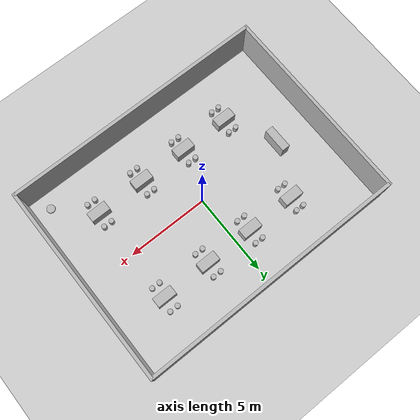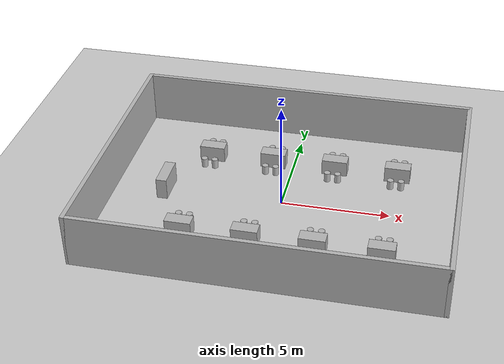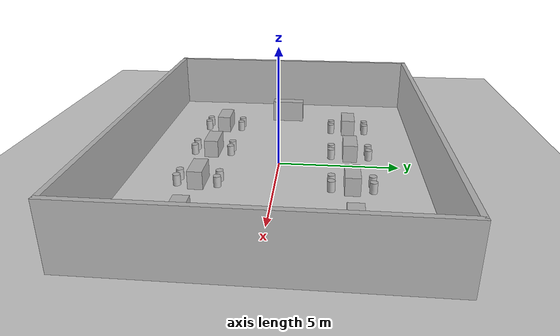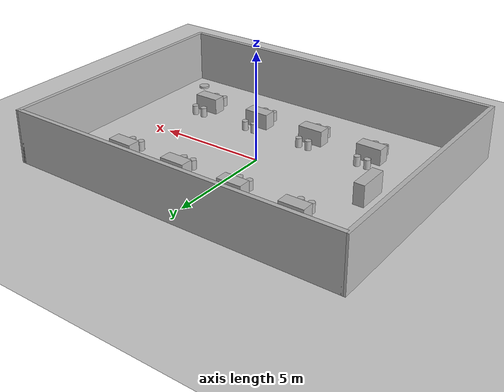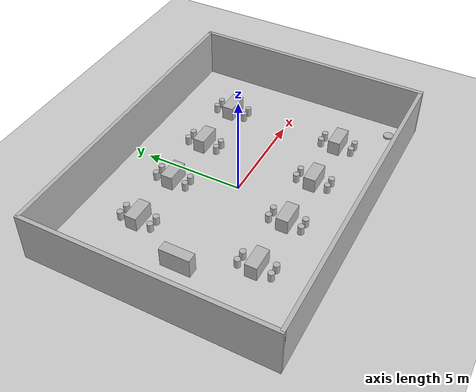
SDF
<?xml version="1.0"?>
<sdf version="1.7">
<world name="simple_restaurant">

  <!-- ====================== GUI 카메라 설정 ====================== -->
  <gui>
    <camera name="user_camera">
      <pose>-20 0 20 0 0.8 0</pose>   <!-- 앞,뒤 / 왼,오 / 위,아래 / roll / pitch / yaw -->
    </camera>
  </gui>

  <!-- Default Environment -->
  <include>
    <uri>model://ground_plane</uri>
  </include>
  <include>
    <uri>model://sun</uri>
  </include>

  <!-- Walls - 정확히 맞춤 -->
  <!-- Bottom Wall -->
  <model name="wall_bottom">
    <static>true</static>
    <pose>0 -6.0 1.25 0 0 0</pose>
    <link name="link">
      <collision name="collision">
        <geometry><box><size>16 0.2 2.5</size></box></geometry>
      </collision>
      <visual name="visual">
        <geometry><box><size>16 0.2 2.5</size></box></geometry>
      </visual>
    </link>
  </model>

  <!-- Top Wall -->
  <model name="wall_top">
    <static>true</static>
    <pose>0 6.0 1.25 0 0 0</pose>
    <link name="link">
      <collision name="collision">
        <geometry><box><size>16 0.2 2.5</size></box></geometry>
      </collision>
      <visual name="visual">
        <geometry><box><size>16 0.2 2.5</size></box></geometry>
      </visual>
    </link>
  </model>

  <!-- Left Wall -->
  <model name="wall_left">
    <static>true</static>
    <pose>-8.0 0 1.25 0 0 0</pose>
    <link name="link">
      <collision name="collision">
        <geometry><box><size>0.2 12.2 2.5</size></box></geometry>
      </collision>
      <visual name="visual">
        <geometry><box><size>0.2 12.2 2.5</size></box></geometry>
      </visual>
    </link>
  </model>

  <!-- Right Wall -->
  <model name="wall_right">
    <static>true</static>
    <pose>8.0 0 1.25 0 0 0</pose>
    <link name="link">
      <collision name="collision">
        <geometry><box><size>0.2 12.2 2.5</size></box></geometry>
      </collision>
      <visual name="visual">
        <geometry><box><size>0.2 12.2 2.5</size></box></geometry>
      </visual>
    </link>
  </model>

  <!-- Counter -->
  <include>
    <uri>model://counter</uri>
    <pose>-5.5 0 0 0 0 1.57</pose>
  </include>

  <!-- Top Row Tables -->
  <include>
    <uri>model://table_set</uri><name>table_set_1</name>
    <pose>-4.0 3.0 0 0 0 0</pose>
  </include>
  <include>
    <uri>model://table_set</uri><name>table_set_2</name>
    <pose>-1.0 3.0 0 0 0 0</pose>
  </include>
  <include>
    <uri>model://table_set</uri><name>table_set_3</name>
    <pose>2.0 3.0 0 0 0 0</pose>
  </include>
  <include>
    <uri>model://table_set</uri><name>table_set_4</name>
    <pose>5.0 3.0 0 0 0 0</pose>
  </include>

  <!-- Bottom Row Tables -->
  <include>
    <uri>model://table_set</uri><name>table_set_5</name>
    <pose>-4.0 -3.0 0 0 0 0</pose>
  </include>
  <include>
    <uri>model://table_set</uri><name>table_set_6</name>
    <pose>-1.0 -3.0 0 0 0 0</pose>
  </include>
  <include>
    <uri>model://table_set</uri><name>table_set_7</name>
    <pose>2.0 -3.0 0 0 0 0</pose>
  </include>
  <include>
    <uri>model://table_set</uri><name>table_set_8</name>
    <pose>5.0 -3.0 0 0 0 0</pose>
  </include>

  <!-- Charging Station -->
  <model name="charging_station">
    <static>true</static>
    <pose>7.0 -5.0 0.05 0 0 0</pose>
    <link name="link">
      <collision name="collision">
        <geometry><cylinder><radius>0.25</radius><length>0.1</length></cylinder></geometry>
      </collision>
      <visual name="visual">
        <geometry><cylinder><radius>0.25</radius><length>0.1</length></cylinder></geometry>
      </visual>
    </link>
  </model>

</world>
</sdf>

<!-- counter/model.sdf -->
<sdf version="1.7">

<model name="counter">

  <static>true</static>

  <link name="counter_link">

    <collision name="collision">
      <pose>0 0 0.5 0 0 0</pose>

      <geometry>
        <box>
          <size>1.5 0.5 1.0</size>
        </box>
      </geometry>
    </collision>

    <visual name="visual">
      <pose>0 0 0.5 0 0 0</pose>

      <geometry>
        <box>
          <size>1.5 0.5 1.0</size>
        </box>
      </geometry>
    </visual>

  </link>

</model>
</sdf>

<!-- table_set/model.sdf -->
<sdf version="1.7">

<model name="table_set">

  <static>true</static>

  <link name="table_set_link">

    <!-- Table -->

    <collision name="table_collision">
      <pose>0 0 0.375 0 0 0</pose>

      <geometry>
        <box>
          <size>1.2 0.6 0.75</size>
        </box>
      </geometry>
    </collision>

    <visual name="table_visual">
      <pose>0 0 0.375 0 0 0</pose>

      <geometry>
        <box>
          <size>1.2 0.6 0.75</size>
        </box>
      </geometry>
    </visual>

    <!-- Chair 1 -->

    <collision name="chair1_collision">
      <pose>-0.25 0.80 0.225 0 0 0</pose>

      <geometry>
        <cylinder>
          <radius>0.15</radius>
          <length>0.45</length>
        </cylinder>
      </geometry>
    </collision>

    <visual name="chair1_visual">
      <pose>-0.25 0.80 0.225 0 0 0</pose>

      <geometry>
        <cylinder>
          <radius>0.15</radius>
          <length>0.45</length>
        </cylinder>
      </geometry>
    </visual>

    <!-- Chair 2 -->

    <collision name="chair2_collision">
      <pose>0.25 0.80 0.225 0 0 0</pose>

      <geometry>
        <cylinder>
          <radius>0.15</radius>
          <length>0.45</length>
        </cylinder>
      </geometry>
    </collision>

    <visual name="chair2_visual">
      <pose>0.25 0.80 0.225 0 0 0</pose>

      <geometry>
        <cylinder>
          <radius>0.15</radius>
          <length>0.45</length>
        </cylinder>
      </geometry>
    </visual>

    <!-- Chair 3 -->

    <collision name="chair3_collision">
      <pose>-0.25 -0.80 0.225 0 0 0</pose>

      <geometry>
        <cylinder>
          <radius>0.15</radius>
          <length>0.45</length>
        </cylinder>
      </geometry>
    </collision>

    <visual name="chair3_visual">
      <pose>-0.25 -0.80 0.225 0 0 0</pose>

      <geometry>
        <cylinder>
          <radius>0.15</radius>
          <length>0.45</length>
        </cylinder>
      </geometry>
    </visual>

    <!-- Chair 4 -->

    <collision name="chair4_collision">
      <pose>0.25 -0.80 0.225 0 0 0</pose>

      <geometry>
        <cylinder>
          <radius>0.15</radius>
          <length>0.45</length>
        </cylinder>
      </geometry>
    </collision>

    <visual name="chair4_visual">
      <pose>0.25 -0.80 0.225 0 0 0</pose>

      <geometry>
        <cylinder>
          <radius>0.15</radius>
          <length>0.45</length>
        </cylinder>
      </geometry>
    </visual>

  </link>

</model>
</sdf>
